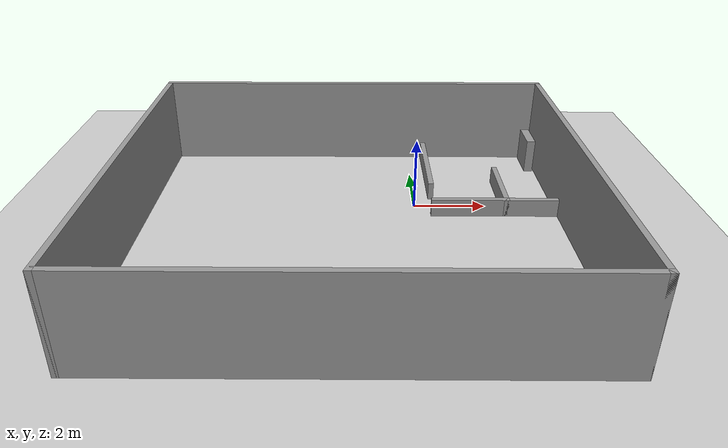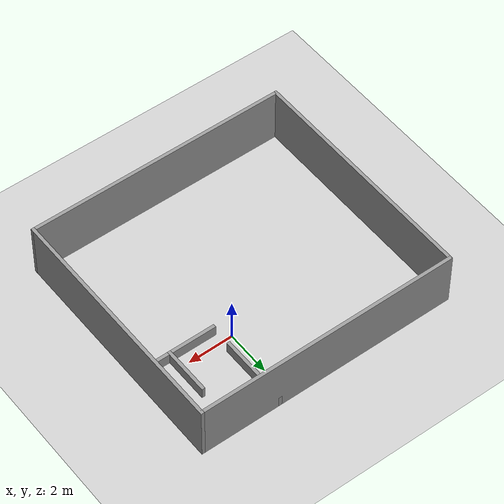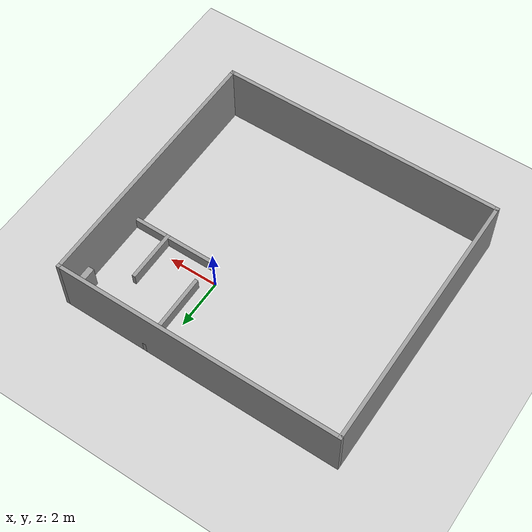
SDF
<?xml version="1.0" ?>
<sdf version="1.5">
	<world name="empty">
		<physics type='ode'>
			<max_step_size>0.01</max_step_size>
			<!-- real_time_update_rate: 0 means as fast as posible -->
			<real_time_update_rate>100</real_time_update_rate>
			<gravity>0 0 -9,81</gravity>
		</physics>
		<gui>
			<camera name="gzclient_camera">
			    <pose>-2 -2.6 30 0 1.57 0</pose>
			</camera>
		</gui>
		<!-- A global light source -->
		<include>
			<uri>model://sun</uri>
		</include>

	 	<!-- A ground plane -->
		<include>
			<uri>model://ground_plane</uri>
		</include>
		<include>
		 <uri>model://Laboratory_map</uri>
		 <pose>-1.75 -1.75 0 0 0 0</pose>
		 <static>0</static>
		</include>

	</world>
</sdf>

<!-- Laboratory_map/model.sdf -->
<sdf version='1.7'>
  <model name='Laboratory_map'>
    <link name='Wall_0'>
      <pose>2.25 3.75 -0 0 -0 1.5708</pose>
      <self_collide>0</self_collide>
      <inertial>
        <pose>0 0 0 0 -0 0</pose>
        <inertia>
          <ixx>3.75539</ixx>
          <ixy>0</ixy>
          <ixz>0</ixz>
          <iyy>140.19</iyy>
          <iyz>0</iyz>
          <izz>137.055</izz>
        </inertia>
        <mass>165.375</mass>
      </inertial>
      <enable_wind>0</enable_wind>
      <kinematic>0</kinematic>
      <gravity>1</gravity>
      <visual name='Wall_0_Visual'>
        <pose>0 0 0.25 0 -0 0</pose>
        <geometry>
          <box>
            <size>3.15 0.15 0.5</size>
          </box>
        </geometry>
        <material>
          <script>
            <uri>file://media/materials/scripts/gazebo.material</uri>
            <name>Gazebo/Grey</name>
          </script>
          <ambient>1 1 1 1</ambient>
          <shader type='pixel'>
            <normal_map>__default__</normal_map>
          </shader>
        </material>
        <meta>
          <layer>0</layer>
        </meta>
        <transparency>0</transparency>
        <cast_shadows>1</cast_shadows>
      </visual>
      <collision name='Wall_0_Collision'>
        <laser_retro>0</laser_retro>
        <max_contacts>10</max_contacts>
        <pose>0 0 0.25 0 -0 0</pose>
        <geometry>
          <box>
            <size>3.15 0.15 0.5</size>
          </box>
        </geometry>
        <surface>
          <friction>
            <ode>
              <mu>1</mu>
              <mu2>1</mu2>
              <fdir1>0 0 0</fdir1>
              <slip1>0</slip1>
              <slip2>0</slip2>
            </ode>
            <torsional>
              <coefficient>1</coefficient>
              <patch_radius>0</patch_radius>
              <surface_radius>0</surface_radius>
              <use_patch_radius>1</use_patch_radius>
              <ode>
                <slip>0</slip>
              </ode>
            </torsional>
          </friction>
          <bounce>
            <restitution_coefficient>0</restitution_coefficient>
            <threshold>1e+06</threshold>
          </bounce>
          <contact>
            <collide_without_contact>0</collide_without_contact>
            <collide_without_contact_bitmask>1</collide_without_contact_bitmask>
            <collide_bitmask>1</collide_bitmask>
            <ode>
              <soft_cfm>0</soft_cfm>
              <soft_erp>0.2</soft_erp>
              <kp>1e+13</kp>
              <kd>1</kd>
              <max_vel>0.01</max_vel>
              <min_depth>0</min_depth>
            </ode>
            <bullet>
              <split_impulse>1</split_impulse>
              <split_impulse_penetration_threshold>-0.01</split_impulse_penetration_threshold>
              <soft_cfm>0</soft_cfm>
              <soft_erp>0.2</soft_erp>
              <kp>1e+13</kp>
              <kd>1</kd>
            </bullet>
          </contact>
        </surface>
      </collision>
    </link>
    <link name='Wall_13'>
      <pose>-5.75 0 -0 0 0 -1.5708</pose>
      <self_collide>0</self_collide>
      <inertial>
        <pose>0 0 0 0 -0 0</pose>
        <inertia>
          <ixx>15865.5</ixx>
          <ixy>0</ixy>
          <ixz>0</ixz>
          <iyy>302697</iyy>
          <iyz>0</iyz>
          <izz>286945</izz>
        </inertia>
        <mass>30352.5</mass>
      </inertial>
      <enable_wind>0</enable_wind>
      <kinematic>0</kinematic>
      <gravity>1</gravity>
      <visual name='Wall_13_Visual'>
        <pose>0 0 1.25 0 -0 0</pose>
        <geometry>
          <box>
            <size>10.65 0.15 2.5</size>
          </box>
        </geometry>
        <material>
          <script>
            <uri>file://media/materials/scripts/gazebo.material</uri>
            <name>Gazebo/Grey</name>
          </script>
          <ambient>0.729 0.741 0.714 1</ambient>
          <shader type='pixel'>
            <normal_map>__default__</normal_map>
          </shader>
          <diffuse>0.7 0.7 0.7 1</diffuse>
          <specular>0.01 0.01 0.01 1</specular>
          <emissive>0 0 0 1</emissive>
        </material>
        <meta>
          <layer>0</layer>
        </meta>
        <transparency>0</transparency>
        <cast_shadows>1</cast_shadows>
      </visual>
      <collision name='Wall_13_Collision'>
        <laser_retro>0</laser_retro>
        <max_contacts>10</max_contacts>
        <pose>0 0 1.25 0 -0 0</pose>
        <geometry>
          <box>
            <size>10.65 0.15 2.5</size>
          </box>
        </geometry>
        <surface>
          <friction>
            <ode>
              <mu>1</mu>
              <mu2>1</mu2>
              <fdir1>0 0 0</fdir1>
              <slip1>0</slip1>
              <slip2>0</slip2>
            </ode>
            <torsional>
              <coefficient>1</coefficient>
              <patch_radius>0</patch_radius>
              <surface_radius>0</surface_radius>
              <use_patch_radius>1</use_patch_radius>
              <ode>
                <slip>0</slip>
              </ode>
            </torsional>
          </friction>
          <bounce>
            <restitution_coefficient>0</restitution_coefficient>
            <threshold>1e+06</threshold>
          </bounce>
          <contact>
            <collide_without_contact>0</collide_without_contact>
            <collide_without_contact_bitmask>1</collide_without_contact_bitmask>
            <collide_bitmask>1</collide_bitmask>
            <ode>
              <soft_cfm>0</soft_cfm>
              <soft_erp>0.2</soft_erp>
              <kp>1e+13</kp>
              <kd>1</kd>
              <max_vel>0.01</max_vel>
              <min_depth>0</min_depth>
            </ode>
            <bullet>
              <split_impulse>1</split_impulse>
              <split_impulse_penetration_threshold>-0.01</split_impulse_penetration_threshold>
              <soft_cfm>0</soft_cfm>
              <soft_erp>0.2</soft_erp>
              <kp>1e+13</kp>
              <kd>1</kd>
            </bullet>
          </contact>
        </surface>
      </collision>
    </link>
    <link name='Wall_19'>
      <pose>0 -5.25 0 0 -0 0</pose>
      <self_collide>0</self_collide>
      <inertial>
        <pose>0 0 0 0 -0 0</pose>
        <inertia>
          <ixx>17355.2</ixx>
          <ixy>0</ixy>
          <ixz>0</ixz>
          <iyy>392820</iyy>
          <iyz>0</iyz>
          <izz>375589</izz>
        </inertia>
        <mass>33202.5</mass>
      </inertial>
      <enable_wind>0</enable_wind>
      <kinematic>0</kinematic>
      <gravity>1</gravity>
      <visual name='Wall_19_Visual'>
        <pose>0 0 1.25 0 -0 0</pose>
        <geometry>
          <box>
            <size>11.65 0.15 2.5</size>
          </box>
        </geometry>
        <material>
          <script>
            <uri>file://media/materials/scripts/gazebo.material</uri>
            <name>Gazebo/Grey</name>
          </script>
          <ambient>0.729 0.741 0.714 1</ambient>
          <shader type='pixel'>
            <normal_map>__default__</normal_map>
          </shader>
          <diffuse>0.7 0.7 0.7 1</diffuse>
          <specular>0.01 0.01 0.01 1</specular>
          <emissive>0 0 0 1</emissive>
        </material>
        <meta>
          <layer>0</layer>
        </meta>
        <transparency>0</transparency>
        <cast_shadows>1</cast_shadows>
      </visual>
      <collision name='Wall_19_Collision'>
        <laser_retro>0</laser_retro>
        <max_contacts>10</max_contacts>
        <pose>0 0 1.25 0 -0 0</pose>
        <geometry>
          <box>
            <size>11.65 0.15 2.5</size>
          </box>
        </geometry>
        <surface>
          <friction>
            <ode>
              <mu>1</mu>
              <mu2>1</mu2>
              <fdir1>0 0 0</fdir1>
              <slip1>0</slip1>
              <slip2>0</slip2>
            </ode>
            <torsional>
              <coefficient>1</coefficient>
              <patch_radius>0</patch_radius>
              <surface_radius>0</surface_radius>
              <use_patch_radius>1</use_patch_radius>
              <ode>
                <slip>0</slip>
              </ode>
            </torsional>
          </friction>
          <bounce>
            <restitution_coefficient>0</restitution_coefficient>
            <threshold>1e+06</threshold>
          </bounce>
          <contact>
            <collide_without_contact>0</collide_without_contact>
            <collide_without_contact_bitmask>1</collide_without_contact_bitmask>
            <collide_bitmask>1</collide_bitmask>
            <ode>
              <soft_cfm>0</soft_cfm>
              <soft_erp>0.2</soft_erp>
              <kp>1e+13</kp>
              <kd>1</kd>
              <max_vel>0.01</max_vel>
              <min_depth>0</min_depth>
            </ode>
            <bullet>
              <split_impulse>1</split_impulse>
              <split_impulse_penetration_threshold>-0.01</split_impulse_penetration_threshold>
              <soft_cfm>0</soft_cfm>
              <soft_erp>0.2</soft_erp>
              <kp>1e+13</kp>
              <kd>1</kd>
            </bullet>
          </contact>
        </surface>
      </collision>
    </link>
    <link name='Wall_21'>
      <pose>5.75 -0 0 0 0 -1.5708</pose>
      <self_collide>0</self_collide>
      <inertial>
        <pose>0 0 0 0 -0 0</pose>
        <inertia>
          <ixx>15865.5</ixx>
          <ixy>0</ixy>
          <ixz>0</ixz>
          <iyy>302697</iyy>
          <iyz>0</iyz>
          <izz>286945</izz>
        </inertia>
        <mass>30352.5</mass>
      </inertial>
      <enable_wind>0</enable_wind>
      <kinematic>0</kinematic>
      <gravity>1</gravity>
      <visual name='Wall_21_Visual'>
        <pose>0 0 1.25 0 -0 0</pose>
        <geometry>
          <box>
            <size>10.65 0.15 2.5</size>
          </box>
        </geometry>
        <material>
          <script>
            <uri>file://media/materials/scripts/gazebo.material</uri>
            <name>Gazebo/Grey</name>
          </script>
          <ambient>0.729 0.741 0.714 1</ambient>
          <shader type='pixel'>
            <normal_map>__default__</normal_map>
          </shader>
          <diffuse>0.7 0.7 0.7 1</diffuse>
          <specular>0.01 0.01 0.01 1</specular>
          <emissive>0 0 0 1</emissive>
        </material>
        <meta>
          <layer>0</layer>
        </meta>
        <transparency>0</transparency>
        <cast_shadows>1</cast_shadows>
      </visual>
      <collision name='Wall_21_Collision'>
        <laser_retro>0</laser_retro>
        <max_contacts>10</max_contacts>
        <pose>0 0 1.25 0 -0 0</pose>
        <geometry>
          <box>
            <size>10.65 0.15 2.5</size>
          </box>
        </geometry>
        <surface>
          <friction>
            <ode>
              <mu>1</mu>
              <mu2>1</mu2>
              <fdir1>0 0 0</fdir1>
              <slip1>0</slip1>
              <slip2>0</slip2>
            </ode>
            <torsional>
              <coefficient>1</coefficient>
              <patch_radius>0</patch_radius>
              <surface_radius>0</surface_radius>
              <use_patch_radius>1</use_patch_radius>
              <ode>
                <slip>0</slip>
              </ode>
            </torsional>
          </friction>
          <bounce>
            <restitution_coefficient>0</restitution_coefficient>
            <threshold>1e+06</threshold>
          </bounce>
          <contact>
            <collide_without_contact>0</collide_without_contact>
            <collide_without_contact_bitmask>1</collide_without_contact_bitmask>
            <collide_bitmask>1</collide_bitmask>
            <ode>
              <soft_cfm>0</soft_cfm>
              <soft_erp>0.2</soft_erp>
              <kp>1e+13</kp>
              <kd>1</kd>
              <max_vel>0.01</max_vel>
              <min_depth>0</min_depth>
            </ode>
            <bullet>
              <split_impulse>1</split_impulse>
              <split_impulse_penetration_threshold>-0.01</split_impulse_penetration_threshold>
              <soft_cfm>0</soft_cfm>
              <soft_erp>0.2</soft_erp>
              <kp>1e+13</kp>
              <kd>1</kd>
            </bullet>
          </contact>
        </surface>
      </collision>
    </link>
    <link name='Wall_23'>
      <pose>4.25 2.25 -0 0 -0 1.5708</pose>
      <self_collide>0</self_collide>
      <inertial>
        <pose>0 0 0 0 -0 0</pose>
        <inertia>
          <ixx>2.5632</ixx>
          <ixy>0</ixy>
          <ixz>0</ixz>
          <iyy>45.832</iyy>
          <iyz>0</iyz>
          <izz>43.692</izz>
        </inertia>
        <mass>112.875</mass>
      </inertial>
      <enable_wind>0</enable_wind>
      <kinematic>0</kinematic>
      <gravity>1</gravity>
      <visual name='Wall_23_Visual'>
        <pose>0 0 0.25 0 -0 0</pose>
        <geometry>
          <box>
            <size>2.15 0.15 0.5</size>
          </box>
        </geometry>
        <material>
          <script>
            <uri>file://media/materials/scripts/gazebo.material</uri>
            <name>Gazebo/Grey</name>
          </script>
          <ambient>1 1 1 1</ambient>
          <shader type='pixel'>
            <normal_map>__default__</normal_map>
          </shader>
        </material>
        <meta>
          <layer>0</layer>
        </meta>
        <transparency>0</transparency>
        <cast_shadows>1</cast_shadows>
      </visual>
      <collision name='Wall_23_Collision'>
        <laser_retro>0</laser_retro>
        <max_contacts>10</max_contacts>
        <pose>0 0 0.25 0 -0 0</pose>
        <geometry>
          <box>
            <size>2.15 0.15 0.5</size>
          </box>
        </geometry>
        <surface>
          <friction>
            <ode>
              <mu>1</mu>
              <mu2>1</mu2>
              <fdir1>0 0 0</fdir1>
              <slip1>0</slip1>
              <slip2>0</slip2>
            </ode>
            <torsional>
              <coefficient>1</coefficient>
              <patch_radius>0</patch_radius>
              <surface_radius>0</surface_radius>
              <use_patch_radius>1</use_patch_radius>
              <ode>
                <slip>0</slip>
              </ode>
            </torsional>
          </friction>
          <bounce>
            <restitution_coefficient>0</restitution_coefficient>
            <threshold>1e+06</threshold>
          </bounce>
          <contact>
            <collide_without_contact>0</collide_without_contact>
            <collide_without_contact_bitmask>1</collide_without_contact_bitmask>
            <collide_bitmask>1</collide_bitmask>
            <ode>
              <soft_cfm>0</soft_cfm>
              <soft_erp>0.2</soft_erp>
              <kp>1e+13</kp>
              <kd>1</kd>
              <max_vel>0.01</max_vel>
              <min_depth>0</min_depth>
            </ode>
            <bullet>
              <split_impulse>1</split_impulse>
              <split_impulse_penetration_threshold>-0.01</split_impulse_penetration_threshold>
              <soft_cfm>0</soft_cfm>
              <soft_erp>0.2</soft_erp>
              <kp>1e+13</kp>
              <kd>1</kd>
            </bullet>
          </contact>
        </surface>
      </collision>
    </link>
    <link name='Wall_3'>
      <pose>4 1.25 0 0 -0 0</pose>
      <self_collide>0</self_collide>
      <inertial>
        <pose>0 0 0 0 -0 0</pose>
        <inertia>
          <ixx>4.35148</ixx>
          <ixy>0</ixy>
          <ixz>0</ixz>
          <iyy>216.736</iyy>
          <iyz>0</iyz>
          <izz>213.103</izz>
        </inertia>
        <mass>191.625</mass>
      </inertial>
      <enable_wind>0</enable_wind>
      <kinematic>0</kinematic>
      <gravity>1</gravity>
      <visual name='Wall_3_Visual'>
        <pose>0 0 0.25 0 -0 0</pose>
        <geometry>
          <box>
            <size>3.65 0.15 0.5</size>
          </box>
        </geometry>
        <material>
          <script>
            <uri>file://media/materials/scripts/gazebo.material</uri>
            <name>Gazebo/Grey</name>
          </script>
          <ambient>1 1 1 1</ambient>
          <shader type='pixel'>
            <normal_map>__default__</normal_map>
          </shader>
        </material>
        <meta>
          <layer>0</layer>
        </meta>
        <transparency>0</transparency>
        <cast_shadows>1</cast_shadows>
      </visual>
      <collision name='Wall_3_Collision'>
        <laser_retro>0</laser_retro>
        <max_contacts>10</max_contacts>
        <pose>0 0 0.25 0 -0 0</pose>
        <geometry>
          <box>
            <size>3.65 0.15 0.5</size>
          </box>
        </geometry>
        <surface>
          <friction>
            <ode>
              <mu>1</mu>
              <mu2>1</mu2>
              <fdir1>0 0 0</fdir1>
              <slip1>0</slip1>
              <slip2>0</slip2>
            </ode>
            <torsional>
              <coefficient>1</coefficient>
              <patch_radius>0</patch_radius>
              <surface_radius>0</surface_radius>
              <use_patch_radius>1</use_patch_radius>
              <ode>
                <slip>0</slip>
              </ode>
            </torsional>
          </friction>
          <bounce>
            <restitution_coefficient>0</restitution_coefficient>
            <threshold>1e+06</threshold>
          </bounce>
          <contact>
            <collide_without_contact>0</collide_without_contact>
            <collide_without_contact_bitmask>1</collide_without_contact_bitmask>
            <collide_bitmask>1</collide_bitmask>
            <ode>
              <soft_cfm>0</soft_cfm>
              <soft_erp>0.2</soft_erp>
              <kp>1e+13</kp>
              <kd>1</kd>
              <max_vel>0.01</max_vel>
              <min_depth>0</min_depth>
            </ode>
            <bullet>
              <split_impulse>1</split_impulse>
              <split_impulse_penetration_threshold>-0.01</split_impulse_penetration_threshold>
              <soft_cfm>0</soft_cfm>
              <soft_erp>0.2</soft_erp>
              <kp>1e+13</kp>
              <kd>1</kd>
            </bullet>
          </contact>
        </surface>
      </collision>
    </link>
    <link name='Wall_6'>
      <pose>-0 5.25 -0 0 -0 3.14159</pose>
      <self_collide>0</self_collide>
      <inertial>
        <pose>0 0 0 0 -0 0</pose>
        <inertia>
          <ixx>17355.2</ixx>
          <ixy>0</ixy>
          <ixz>0</ixz>
          <iyy>392820</iyy>
          <iyz>0</iyz>
          <izz>375589</izz>
        </inertia>
        <mass>33202.5</mass>
      </inertial>
      <enable_wind>0</enable_wind>
      <kinematic>0</kinematic>
      <gravity>1</gravity>
      <visual name='Wall_6_Visual'>
        <pose>0 0 1.25 0 -0 0</pose>
        <geometry>
          <box>
            <size>11.65 0.15 2.5</size>
          </box>
        </geometry>
        <material>
          <script>
            <uri>file://media/materials/scripts/gazebo.material</uri>
            <name>Gazebo/Grey</name>
          </script>
          <ambient>0.729 0.741 0.714 1</ambient>
          <shader type='pixel'>
            <normal_map>__default__</normal_map>
          </shader>
          <diffuse>0.7 0.7 0.7 1</diffuse>
          <specular>0.01 0.01 0.01 1</specular>
          <emissive>0 0 0 1</emissive>
        </material>
        <meta>
          <layer>0</layer>
        </meta>
        <transparency>0</transparency>
        <cast_shadows>1</cast_shadows>
      </visual>
      <collision name='Wall_6_Collision'>
        <laser_retro>0</laser_retro>
        <max_contacts>10</max_contacts>
        <pose>0 0 1.25 0 -0 0</pose>
        <geometry>
          <box>
            <size>11.65 0.15 2.5</size>
          </box>
        </geometry>
        <surface>
          <friction>
            <ode>
              <mu>1</mu>
              <mu2>1</mu2>
              <fdir1>0 0 0</fdir1>
              <slip1>0</slip1>
              <slip2>0</slip2>
            </ode>
            <torsional>
              <coefficient>1</coefficient>
              <patch_radius>0</patch_radius>
              <surface_radius>0</surface_radius>
              <use_patch_radius>1</use_patch_radius>
              <ode>
                <slip>0</slip>
              </ode>
            </torsional>
          </friction>
          <bounce>
            <restitution_coefficient>0</restitution_coefficient>
            <threshold>1e+06</threshold>
          </bounce>
          <contact>
            <collide_without_contact>0</collide_without_contact>
            <collide_without_contact_bitmask>1</collide_without_contact_bitmask>
            <collide_bitmask>1</collide_bitmask>
            <ode>
              <soft_cfm>0</soft_cfm>
              <soft_erp>0.2</soft_erp>
              <kp>1e+13</kp>
              <kd>1</kd>
              <max_vel>0.01</max_vel>
              <min_depth>0</min_depth>
            </ode>
            <bullet>
              <split_impulse>1</split_impulse>
              <split_impulse_penetration_threshold>-0.01</split_impulse_penetration_threshold>
              <soft_cfm>0</soft_cfm>
              <soft_erp>0.2</soft_erp>
              <kp>1e+13</kp>
              <kd>1</kd>
            </bullet>
          </contact>
        </surface>
      </collision>
    </link>
    <link name='link_0'>
      <inertial>
        <mass>700</mass>
        <inertia>
          <ixx>116.667</ixx>
          <ixy>0</ixy>
          <ixz>0</ixz>
          <iyy>116.667</iyy>
          <iyz>0</iyz>
          <izz>116.667</izz>
        </inertia>
        <pose>0 0 0 0 -0 0</pose>
      </inertial>
      <pose>5.5 4.6 0.5 0 -0 0</pose>
      <gravity>1</gravity>
      <self_collide>0</self_collide>
      <kinematic>0</kinematic>
      <enable_wind>0</enable_wind>
      <visual name='visual'>
        <pose>0 0 0 0 -0 0</pose>
        <geometry>
          <box>
            <size>0.25 1 1</size>
          </box>
        </geometry>
        <material>
          <lighting>1</lighting>
          <script>
            <uri>file://media/materials/scripts/gazebo.material</uri>
            <name>Gazebo/Grey</name>
          </script>
          <shader type='pixel'>
            <normal_map>__default__</normal_map>
          </shader>
          <ambient>0.3 0.3 0.3 1</ambient>
          <diffuse>0.7 0.7 0.7 1</diffuse>
          <specular>0.01 0.01 0.01 1</specular>
          <emissive>0 0 0 1</emissive>
        </material>
        <transparency>0</transparency>
        <cast_shadows>1</cast_shadows>
      </visual>
      <collision name='collision'>
        <laser_retro>0</laser_retro>
        <max_contacts>10</max_contacts>
        <pose>0 0 0 0 -0 0</pose>
        <geometry>
          <box>
            <size>0.25 1 1</size>
          </box>
        </geometry>
        <surface>
          <friction>
            <ode>
              <mu>1</mu>
              <mu2>1</mu2>
              <fdir1>0 0 0</fdir1>
              <slip1>0</slip1>
              <slip2>0</slip2>
            </ode>
            <torsional>
              <coefficient>1</coefficient>
              <patch_radius>0</patch_radius>
              <surface_radius>0</surface_radius>
              <use_patch_radius>1</use_patch_radius>
              <ode>
                <slip>0</slip>
              </ode>
            </torsional>
          </friction>
          <bounce>
            <restitution_coefficient>0</restitution_coefficient>
            <threshold>1e+06</threshold>
          </bounce>
          <contact>
            <collide_without_contact>0</collide_without_contact>
            <collide_without_contact_bitmask>1</collide_without_contact_bitmask>
            <collide_bitmask>1</collide_bitmask>
            <ode>
              <soft_cfm>0</soft_cfm>
              <soft_erp>0.2</soft_erp>
              <kp>1e+13</kp>
              <kd>1</kd>
              <max_vel>0.01</max_vel>
              <min_depth>0</min_depth>
            </ode>
            <bullet>
              <split_impulse>1</split_impulse>
              <split_impulse_penetration_threshold>-0.01</split_impulse_penetration_threshold>
              <soft_cfm>0</soft_cfm>
              <soft_erp>0.2</soft_erp>
              <kp>1e+13</kp>
              <kd>1</kd>
            </bullet>
          </contact>
        </surface>
      </collision>
    </link>
    <static>0</static>
    <allow_auto_disable>1</allow_auto_disable>
  </model>
</sdf>
